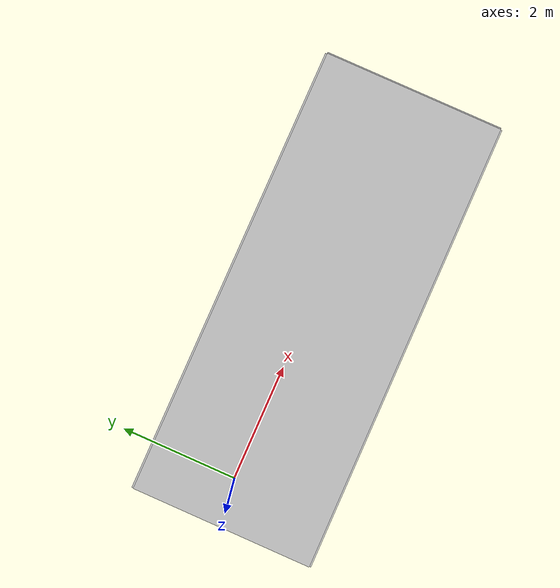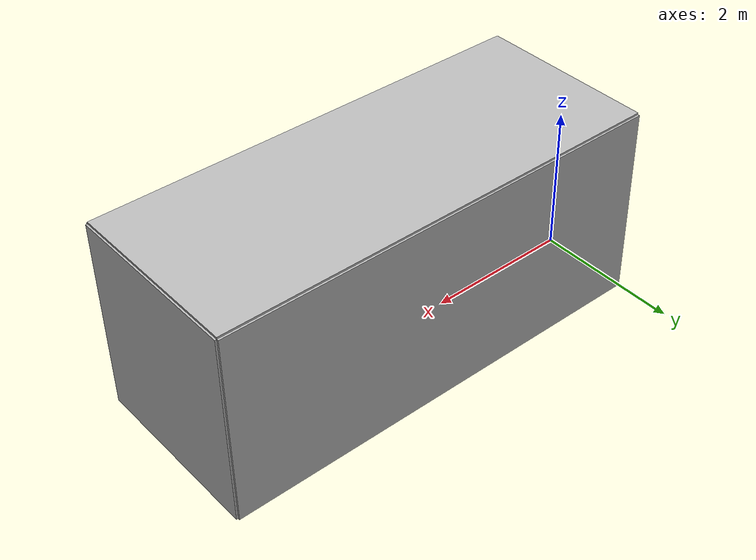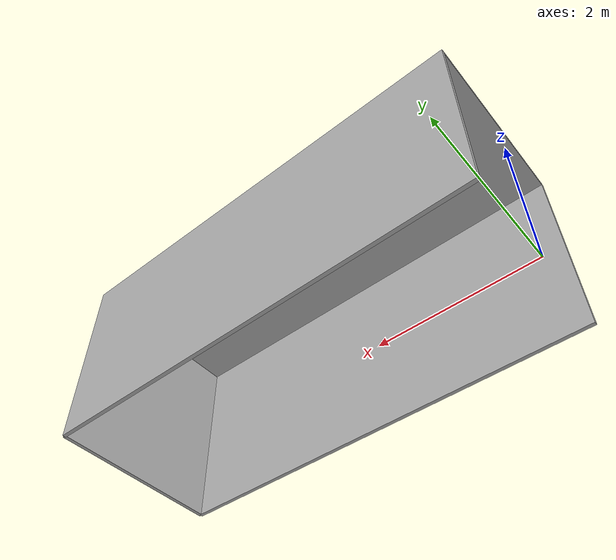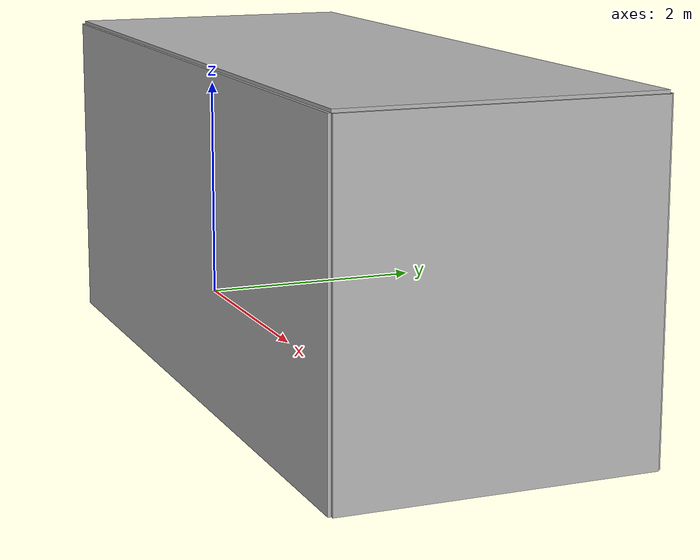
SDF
<?xml version="1.0" ?>
<sdf version="1.6">
  <model name="container">
    <static>true</static>

    <!-- LEFT WALL -->
    <link name="left_wall">
      <pose>3 1.2 1.3 0 0 0</pose>
      <collision name="collision">
        <geometry>
          <box><size>6 0.05 2.6</size></box>
        </geometry>
      </collision>
      <visual name="visual">
        <geometry>
          <box><size>6 0.05 2.6</size></box>
        </geometry>
      </visual>
    </link>

    <!-- RIGHT WALL -->
    <link name="right_wall">
      <pose>3 -1.2 1.3 0 0 0</pose>
      <collision name="collision">
        <geometry>
          <box><size>6 0.05 2.6</size></box>
        </geometry>
      </collision>
      <visual name="visual">
        <geometry>
          <box><size>6 0.05 2.6</size></box>
        </geometry>
      </visual>
    </link>

    <!-- BACK WALL -->
    <link name="back_wall">
      <pose>6 0 1.3 0 0 0</pose>
      <collision name="collision">
        <geometry>
          <box><size>0.05 2.4 2.6</size></box>
        </geometry>
      </collision>
      <visual name="visual">
        <geometry>
          <box><size>0.05 2.4 2.6</size></box>
        </geometry>
      </visual>
    </link>

    <!-- ROOF -->
    <link name="roof">
      <pose>3 0 2.6 0 0 0</pose>
      <collision name="collision">
        <geometry>
          <box><size>6 2.4 0.05</size></box>
        </geometry>
      </collision>
      <visual name="visual">
        <geometry>
          <box><size>6 2.4 0.05</size></box>
        </geometry>
      </visual>
    </link>

  </model>
</sdf>
